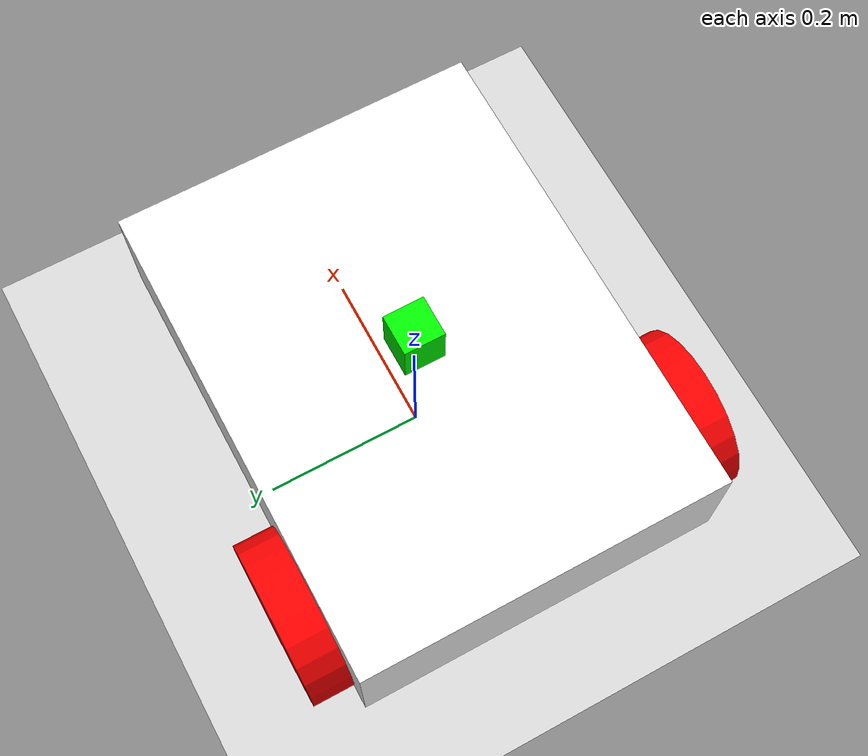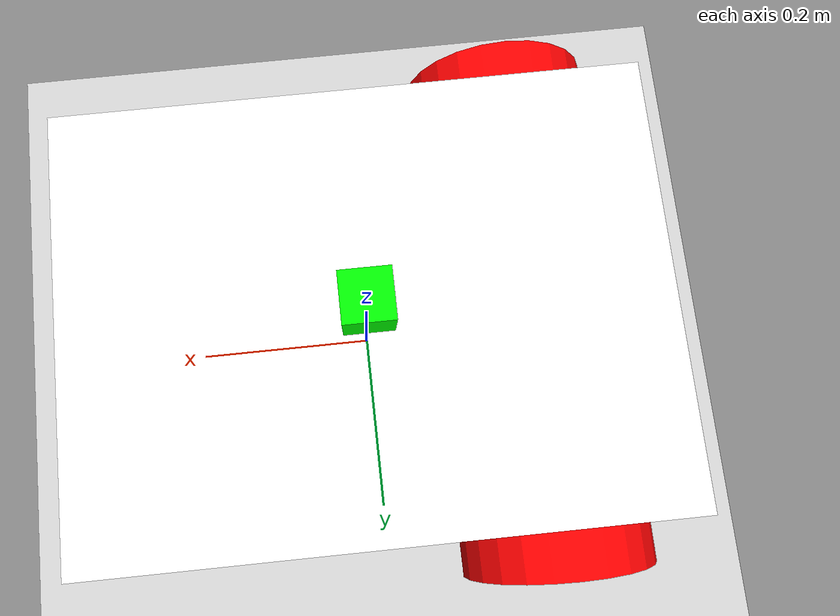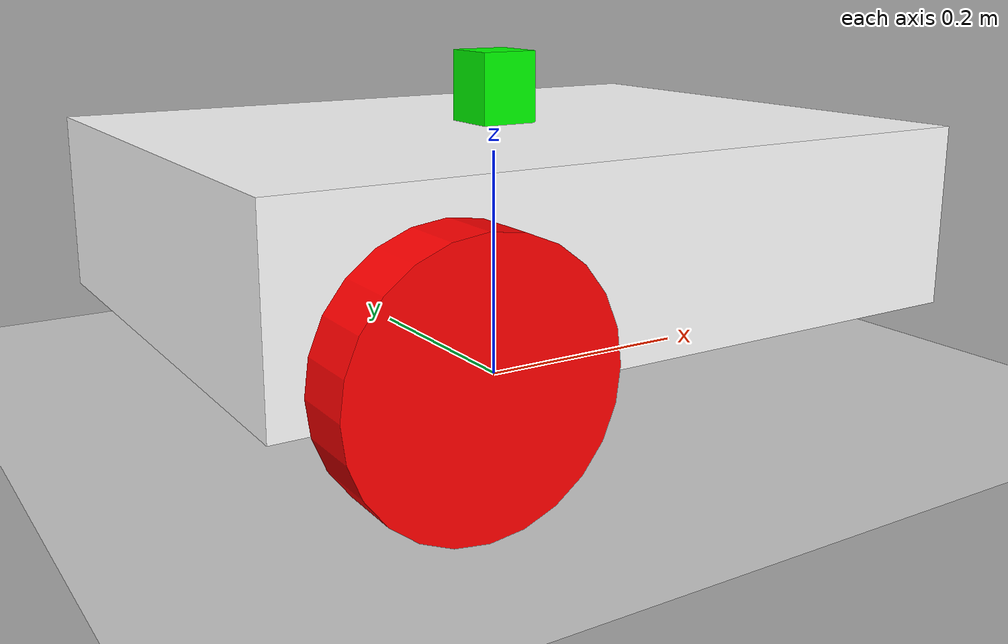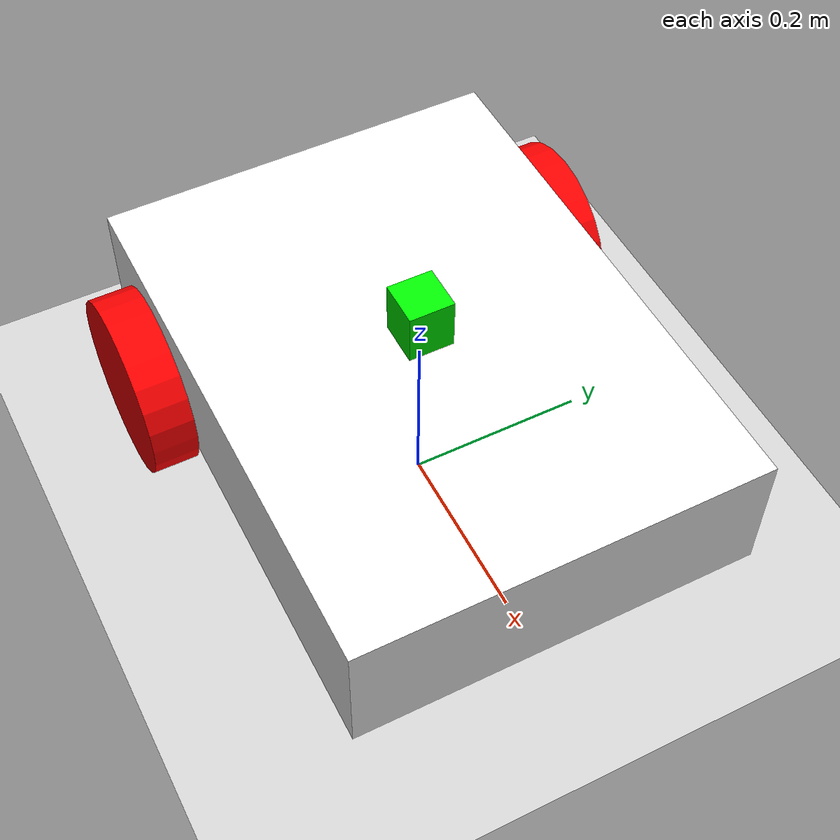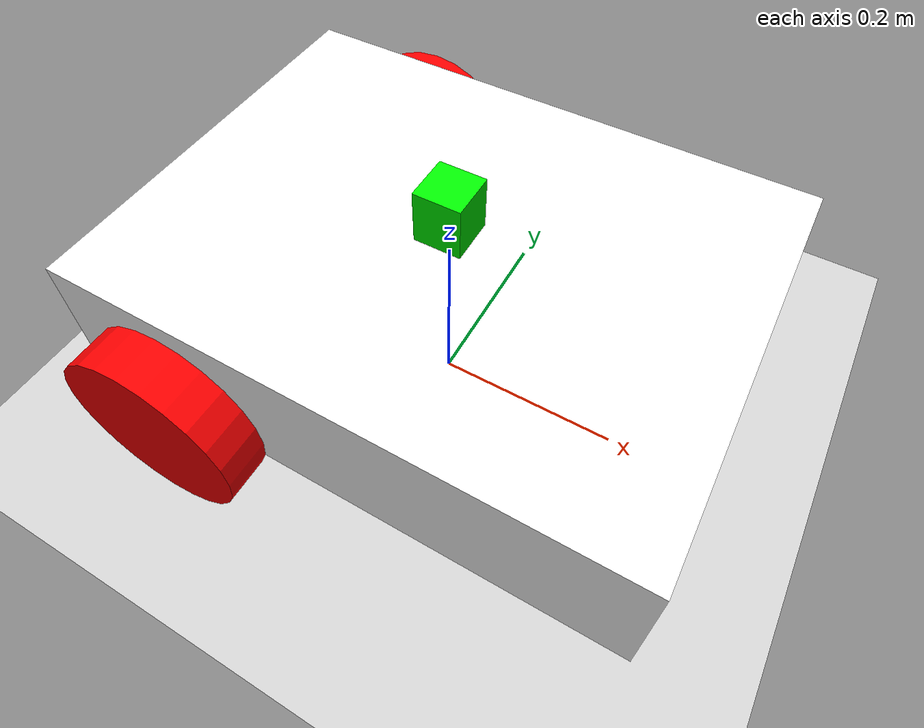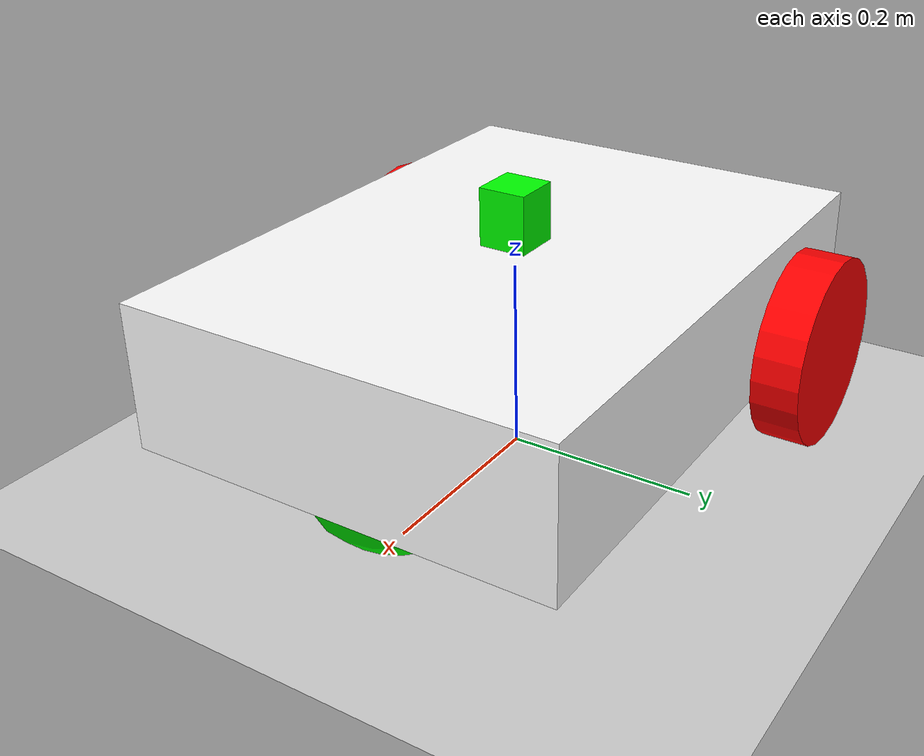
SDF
<?xml version="1.0" ?>
<sdf version="1.9">
    <world name="car_world">
        <!-- Physics settings -->
        <physics name="1ms" type="ignored">
            <max_step_size>0.001</max_step_size>
            <real_time_factor>1.0</real_time_factor>
        </physics>

        <!-- Plugins for simulation and scene -->
        <plugin
        filename="gz-sim-physics-system"
        name="gz::sim::systems::Physics">
        </plugin>
        <plugin
        filename="gz-sim-sensors-system"
        name="gz::sim::systems::Sensors">
        <render_engine>ogre2</render_engine>
        </plugin>
        <plugin
        filename="gz-sim-scene-broadcaster-system"
        name="gz::sim::systems::SceneBroadcaster">
        </plugin>
        <plugin
        filename="gz-sim-user-commands-system"
        name="gz::sim::systems::UserCommands">
        </plugin>
        <plugin
        filename="BasicSystem"
        name="ros_gz_example_gazebo::BasicSystem">
        </plugin>
        <plugin
        filename="FullSystem"
        name="ros_gz_example_gazebo::FullSystem">
        </plugin>

        <!-- Sunlight -->
        <light type="directional" name="sun">
            <cast_shadows>true</cast_shadows>
            <pose>0 0 10 0 0 0</pose>
            <diffuse>0.8 0.8 0.8 1</diffuse>
            <specular>0.2 0.2 0.2 1</specular>
            <attenuation>
                <range>1000</range>
                <constant>0.9</constant>
                <linear>0.01</linear>
                <quadratic>0.001</quadratic>
            </attenuation>
            <direction>-0.5 0.1 -0.9</direction>
        </light>

        <!-- Ground plane -->
        <model name="ground_plane">
            <static>true</static>
            <link name="link">
                <collision name="collision">
                    <geometry>
                        <plane>
                            <normal>0 0 1</normal>
                        </plane>
                    </geometry>
                </collision>
                <visual name="visual">
                    <geometry>
                        <plane>
                            <normal>0 0 1</normal>
                            <size>100 100</size>
                        </plane>
                    </geometry>
                    <material>
                        <ambient>0.8 0.8 0.8 1</ambient>
                        <diffuse>0.8 0.8 0.8 1</diffuse>
                        <specular>0.8 0.8 0.8 1</specular>
                    </material>
                </visual>
            </link>
        </model>

        <!-- Include vehicle_white model -->

        <model name="vehicle_white">
            <self_collide>true</self_collide>
            <pose>0 0 0.0 0 0 0</pose>
            <include merge="true">
                <uri>/robot_ws/src/robot_pkg/models/vehicle_white</uri>
            </include>

            <plugin
                filename="gz-sim-joint-state-publisher-system"
                name="gz::sim::systems::JointStatePublisher">
            </plugin>

            <plugin
                filename="gz-sim-pose-publisher-system"
                name="gz::sim::systems::PosePublisher">
                <publish_link_pose>true</publish_link_pose>
                <use_pose_vector_msg>true</use_pose_vector_msg>
                <static_publisher>true</static_publisher>
                <static_update_frequency>1</static_update_frequency>
            </plugin>

            <plugin
                filename="gz-sim-odometry-publisher-system"
                name="gz::sim::systems::OdometryPublisher">
                <odom_frame>vehicle_white/odom</odom_frame>
                <robot_base_frame>vehicle_white</robot_base_frame>
            </plugin>

        </model>

        <!-- Moving Forward-->
        <plugin filename="gz-sim-triggered-publisher-system"
                name="gz::sim::systems::TriggeredPublisher">
            <input type="gz.msgs.Int32" topic="/keyboard/keypress">
                <match field="data">16777235</match><!-- Upwards Arrow ⬆ -->
            </input>
            <output type="gz.msgs.Twist" topic="/cmd_vel">
                linear: {x: 0.5}, angular: {z: 0.0}
            </output>
        </plugin>
        <!-- Moving Backward-->
        <plugin filename="gz-sim-triggered-publisher-system"
                name="gz::sim::systems::TriggeredPublisher">
            <input type="gz.msgs.Int32" topic="/keyboard/keypress">
                <match field="data">16777237</match><!--Downwards Arrow -->
            </input>
            <output type="gz.msgs.Twist" topic="/cmd_vel">
                linear: {x: -0.5}, angular: {z: 0.0}
            </output>
        </plugin>
        <!-- Moving Right-->
        <plugin filename="gz-sim-triggered-publisher-system"
                name="gz::sim::systems::TriggeredPublisher">
            <input type="gz.msgs.Int32" topic="/keyboard/keypress">
                <match field="data">16777236</match><!--  →	Rightwards Arrow -->
            </input>
            <output type="gz.msgs.Twist" topic="/cmd_vel">
                linear: {x: 0.0}, angular: {z: -0.5}
            </output>
        </plugin>
        <!-- Moving Left-->
        <plugin filename="gz-sim-triggered-publisher-system"
                name="gz::sim::systems::TriggeredPublisher">
            <input type="gz.msgs.Int32" topic="/keyboard/keypress">
                <match field="data">16777234</match><!--  ←	Leftwards Arrow -->
            </input>
            <output type="gz.msgs.Twist" topic="/cmd_vel">
                linear: {x: 0.0}, angular: {z: 0.5}
            </output>
        </plugin>

        <!-- Stop-->
        <plugin filename="gz-sim-triggered-publisher-system"
                name="gz::sim::systems::TriggeredPublisher">
            <input type="gz.msgs.Int32" topic="/keyboard/keypress">
                <match field="data">75</match>
            </input>
            <output type="gz.msgs.Twist" topic="/cmd_vel">
                linear: {x: 0.0}, angular: {z: 0.0}
            </output>
        </plugin>

    </world>
</sdf>

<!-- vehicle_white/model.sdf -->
<sdf version="1.9">
    <model name='vehicle_white'>
        <link name='chassis'>
            <pose>0.0 0 0.15 0 0 0</pose>
            <inertial> <!--inertial properties of the link mass, inertia matix-->
                <mass>1.14395</mass>
                <inertia>
                    <ixx>0.095329</ixx>
                    <ixy>0</ixy>
                    <ixz>0</ixz>
                    <iyy>0.381317</iyy>
                    <iyz>0</iyz>
                    <izz>0.476646</izz>
                </inertia>
            </inertial>
            <visual name='visual'>
                <geometry>
                    <box>
                        <size>0.6 0.45 0.15</size>
                    </box>
                </geometry>
                <!--let's add color to our link-->
                <material>
                    <ambient>1 1 1 1</ambient>
                    <diffuse>1 1 1 1</diffuse>
                    <specular>1 1 1 1</specular>
                </material>
            </visual>
            <collision name='collision'>
                <geometry>
                    <box>
                        <size>0.6 0.45 0.15</size>
                    </box>
                </geometry>
            </collision>
            <!-- imu_sensor -->
            <sensor name="imu_sensor" type="imu">
                <always_on>1</always_on>
                <update_rate>1</update_rate>
                <visualize>true</visualize>
                <topic>imu</topic>
            </sensor>
        </link>
        <!-- left_wheel -->
        <link name='left_wheel'>
            <pose relative_to="chassis">-0.175 0.25 -0.05 -1.5707 0 0</pose>
            <inertial>
                <mass>1</mass>
                <inertia>
                    <ixx>0.043333</ixx>
                    <ixy>0</ixy>
                    <ixz>0</ixz>
                    <iyy>0.043333</iyy>
                    <iyz>0</iyz>
                    <izz>0.08</izz>
                </inertia>
            </inertial>
                <visual name='visual'>
                <geometry>
                    <cylinder>
                        <radius>0.1</radius>
                        <length>0.05</length>
                    </cylinder>
                </geometry>
                <material>
                    <ambient>1.0 0.0 0.0 1</ambient>
                    <diffuse>1.0 0.0 0.0 1</diffuse>
                    <specular>1.0 0.0 0.0 1</specular>
                </material>
            </visual>
            <collision name='collision'>
                <geometry>
                    <cylinder>
                        <radius>0.1</radius>
                        <length>0.05</length>
                    </cylinder>
                </geometry>
            </collision>
        </link>
        <!--The same as left wheel but with different position-->
        <link name='right_wheel'>
            <pose relative_to="chassis">-0.175 -0.25 -0.05 -1.5707 0 0</pose> <!--angles are in radian-->
            <inertial>
                <mass>1</mass>
                <inertia>
                    <ixx>0.043333</ixx>
                    <ixy>0</ixy>
                    <ixz>0</ixz>
                    <iyy>0.043333</iyy>
                    <iyz>0</iyz>
                    <izz>0.08</izz>
                </inertia>
            </inertial>
            <visual name='visual'>
                <geometry>
                    <cylinder>
                        <radius>0.1</radius>
                        <length>0.05</length>
                    </cylinder>
                </geometry>
                <material>
                    <ambient>1.0 0.0 0.0 1</ambient>
                    <diffuse>1.0 0.0 0.0 1</diffuse>
                    <specular>1.0 0.0 0.0 1</specular>
                </material>
            </visual>
            <collision name='collision'>
                <geometry>
                    <cylinder>
                        <radius>0.1</radius>
                        <length>0.05</length>
                    </cylinder>
                </geometry>
            </collision>
        </link>
        <frame name="caster_frame" attached_to='chassis'>
            <pose>0.2 0 -0.05 0 0 0</pose>
        </frame>
        <!--caster wheel-->
        <link name='caster'>
            <pose relative_to='caster_frame'/>
            <inertial>
                <mass>1</mass>
                <inertia>
                    <ixx>0.016</ixx>
                    <ixy>0</ixy>
                    <ixz>0</ixz>
                    <iyy>0.016</iyy>
                    <iyz>0</iyz>
                    <izz>0.016</izz>
                </inertia>
            </inertial>
            <visual name='visual'>
                <geometry>
                    <sphere>
                        <radius>0.1</radius>
                    </sphere>
                </geometry>
                <material>
                    <ambient>0.0 1 0.0 1</ambient>
                    <diffuse>0.0 1 0.0 1</diffuse>
                    <specular>0.0 1 0.0 1</specular>
                </material>
            </visual>
            <collision name='collision'>
                <geometry>
                    <sphere>
                        <radius>0.1</radius>
                    </sphere>
                </geometry>
            </collision>
        </link>
        <link name='lidar'>
            <pose>0 0 0.25 0 0 0</pose>
            <inertial>
                <mass>0.1</mass>
                <inertia>
                    <ixx>0.016</ixx>
                    <ixy>0</ixy>
                    <ixz>0</ixz>
                    <iyy>0.016</iyy>
                    <iyz>0</iyz>
                    <izz>0.016</izz>
                </inertia>
            </inertial>
            <visual name='visual'>
                <geometry>
                    <box>
                        <size>0.050 0.050 0.07</size>
                    </box>
                </geometry>
                <material>
                    <ambient>0.0 1 0.0 1</ambient>
                    <diffuse>0.0 1 0.0 1</diffuse>
                    <specular>0.0 1 0.0 1</specular>
                </material>
            </visual>
            <collision name='collision'>
                <geometry>
                    <box>
                        <size>0.050 0.050 0.07</size>
                    </box>
                </geometry>
            </collision>
            <sensor name='gpu_lidar' type='gpu_lidar'>
                <pose relative_to='lidar'>0 0 0 0 0 0</pose>
                <topic>scan</topic>
                <update_rate>10</update_rate>
                <ray>
                    <scan>
                        <horizontal>
                            <samples>640</samples>
                            <resolution>1</resolution>
                            <min_angle>-1.57</min_angle>
                            <max_angle>1.57</max_angle>
                        </horizontal>
                        <vertical>
                            <samples>1</samples>
                            <resolution>0.01</resolution>
                            <min_angle>0</min_angle>
                            <max_angle>0</max_angle>
                        </vertical>
                    </scan>
                    <range>
                        <min>0.08</min>
                        <max>10.0</max>
                        <resolution>0.01</resolution>
                    </range>
                </ray>
                <always_on>1</always_on>
                <visualize>true</visualize>
            </sensor>
        </link>
        <joint name='joint_lidar' type='fixed'>
            <parent>chassis</parent>
            <child>lidar</child>
        </joint>

        <joint name='left_wheel_joint' type='revolute'>
            <pose relative_to='left_wheel'/>
            <parent>chassis</parent>
            <child>left_wheel</child>
            <axis>
                <xyz expressed_in='__model__'>0 1 0</xyz> <!--can be defined as any frame or even arbitrary frames-->
                <limit>
                    <lower>-1.79769e+308</lower>    <!--negative infinity-->
                    <upper>1.79769e+308</upper>     <!--positive infinity-->
                </limit>
            </axis>
        </joint>
        <joint name='right_wheel_joint' type='revolute'>
            <pose relative_to='right_wheel'/>
            <parent>chassis</parent>
            <child>right_wheel</child>
            <axis>
                <xyz expressed_in='__model__'>0 1 0</xyz>
                <limit>
                    <lower>-1.79769e+308</lower>    <!--negative infinity-->
                    <upper>1.79769e+308</upper>     <!--positive infinity-->
                </limit>
            </axis>
        </joint>

        <joint name='caster_wheel' type='ball'>
            <parent>chassis</parent>
            <child>caster</child>
        </joint>

        <plugin
            filename="gz-sim-diff-drive-system"
            name="gz::sim::systems::DiffDrive">
            <left_joint>left_wheel_joint</left_joint>
            <right_joint>right_wheel_joint</right_joint>
            <wheel_separation>1.2</wheel_separation>
            <wheel_radius>0.4</wheel_radius>
            <odom_publish_frequency>1</odom_publish_frequency>
            <topic>cmd_vel</topic>
        </plugin>
    </model>
</sdf>
